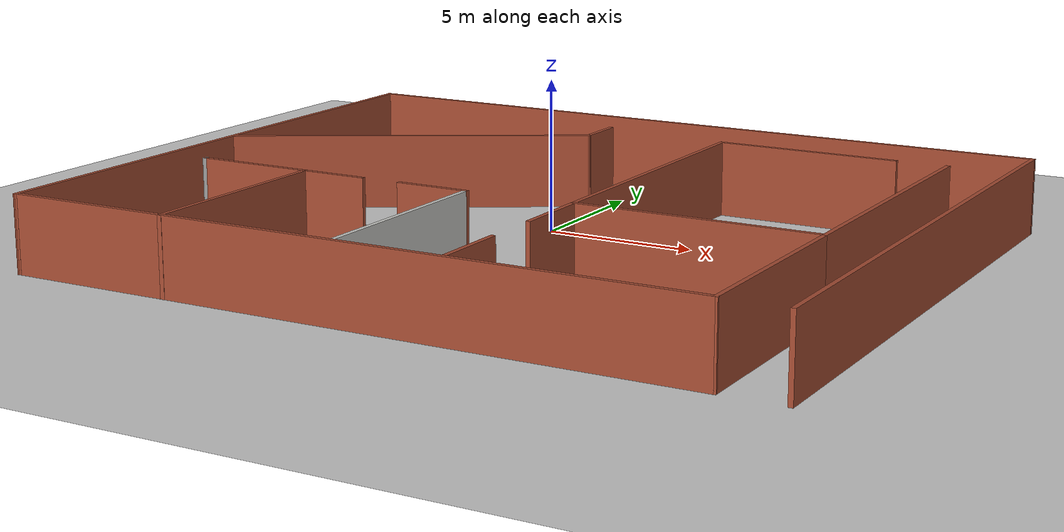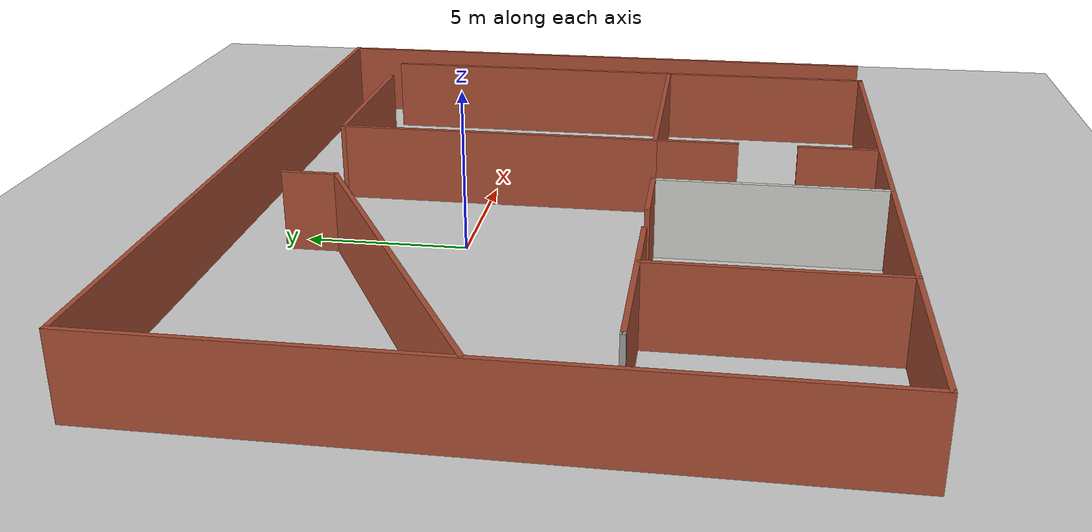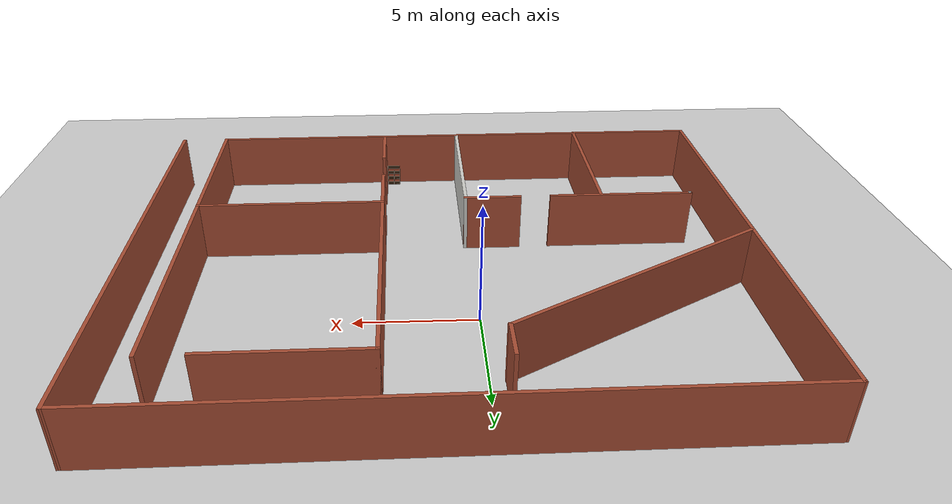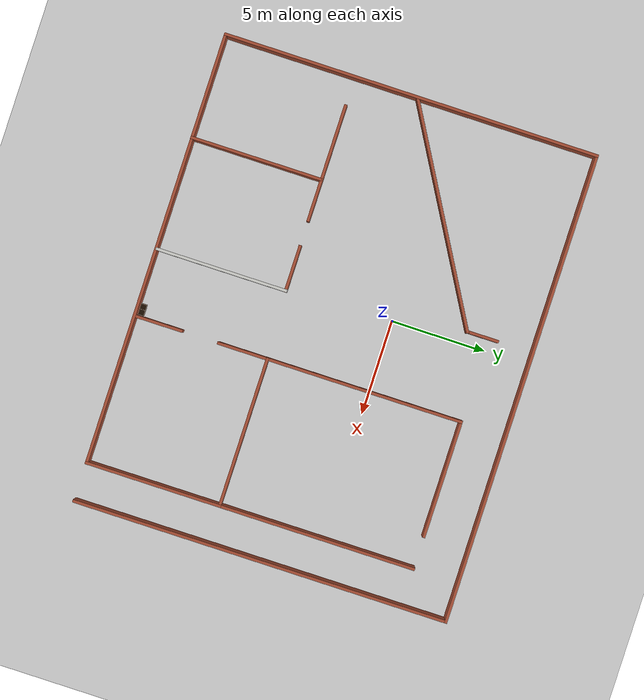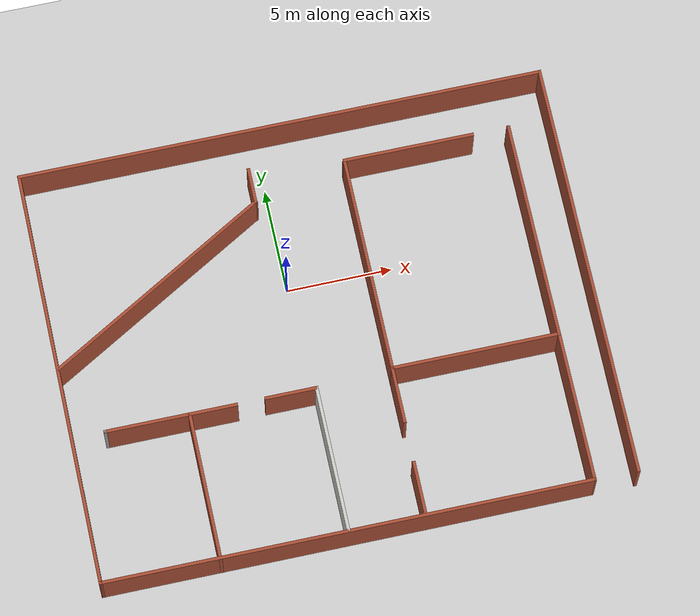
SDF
<sdf version="1.6">
 <world name="default">
  <model name="ground_plane">
   <static>1</static>
   <link name="link">
    <collision name="collision">
     <geometry><plane><normal>0 0 1</normal><size>100 100</size></plane></geometry>
     <surface><friction><ode><mu>100</mu><mu2>50</mu2></ode></friction></surface>
    </collision>
    <visual name="visual">
     <cast_shadows>0</cast_shadows>
     <geometry><plane><normal>0 0 1</normal><size>100 100</size></plane></geometry>
     <material>
      <script><uri>file://media/materials/scripts/gazebo.material</uri><name>Gazebo/Grey</name></script>
     </material>
    </visual>
   </link>
  </model>
  <model name="assignment_world">
   <pose>1.22682 -2.63609 0 0 -0 0</pose>
   <link name="Wall_11">
    <collision name="Wall_11_Collision">
     <geometry><box><size>7.25 0.15 2.5</size></box></geometry>
     <pose>0 0 1.25 0 -0 0</pose>
    </collision>
    <visual name="Wall_11_Visual">
     <pose>0 0 1.25 0 -0 0</pose>
     <geometry><box><size>7.25 0.15 2.5</size></box></geometry>
     <material>
      <script><uri>file://media/materials/scripts/gazebo.material</uri><name>Gazebo/Bricks</name></script>
      <ambient>1 1 1 1</ambient>
     </material>
     <meta><layer>0</layer></meta>
    </visual>
    <pose>10.422 -6.36383 0 0 -0 1.5708</pose>
   </link>
   <link name="Wall_12">
    <collision name="Wall_12_Collision">
     <geometry><box><size>8 0.15 2.5</size></box></geometry>
     <pose>0 0 1.25 0 -0 0</pose>
    </collision>
    <visual name="Wall_12_Visual">
     <pose>0 0 1.25 0 -0 0</pose>
     <geometry><box><size>8 0.15 2.5</size></box></geometry>
     <material>
      <script><uri>file://media/materials/scripts/gazebo.material</uri><name>Gazebo/Bricks</name></script>
      <ambient>1 1 1 1</ambient>
     </material>
     <meta><layer>0</layer></meta>
    </visual>
    <pose>6.49702 -2.81383 0 0 -0 3.14159</pose>
   </link>
   <link name="Wall_13">
    <collision name="Wall_13_Collision">
     <geometry><box><size>2.75 0.15 2.5</size></box></geometry>
     <pose>0 0 1.25 0 -0 0</pose>
    </collision>
    <visual name="Wall_13_Visual">
     <pose>0 0 1.25 0 -0 0</pose>
     <geometry><box><size>2.75 0.15 2.5</size></box></geometry>
     <material>
      <script><uri>file://media/materials/scripts/gazebo.material</uri><name>Gazebo/Bricks</name></script>
      <ambient>1 1 1 1</ambient>
     </material>
     <meta><layer>0</layer></meta>
    </visual>
    <pose>2.57202 -4.11383 0 0 -0 -1.5708</pose>
   </link>
   <link name="Wall_15">
    <collision name="Wall_15_Collision">
     <geometry><box><size>2.5 0.15 2.5</size></box></geometry>
     <pose>0 0 1.25 0 -0 0</pose>
    </collision>
    <visual name="Wall_15_Visual">
     <pose>0 0 1.25 0 -0 0</pose>
     <geometry><box><size>2.5 0.15 2.5</size></box></geometry>
     <material>
      <script><uri>file://media/materials/scripts/gazebo.material</uri><name>Gazebo/Bricks</name></script>
      <ambient>1 1 1 1</ambient>
     </material>
     <meta><layer>0</layer></meta>
    </visual>
    <pose>2.56055 -8.598 0 0 -0 -1.5708</pose>
   </link>
   <link name="Wall_17">
    <collision name="Wall_17_Collision">
     <geometry><box><size>10.5 0.15 2.5</size></box></geometry>
     <pose>0 0 1.25 0 -0 0</pose>
    </collision>
    <visual name="Wall_17_Visual">
     <pose>0 0 1.25 0 -0 0</pose>
     <geometry><box><size>10.5 0.15 2.5</size></box></geometry>
     <material>
      <script><uri>file://media/materials/scripts/gazebo.material</uri><name>Gazebo/Bricks</name></script>
      <ambient>1 1 1 1</ambient>
     </material>
     <meta><layer>0</layer></meta>
    </visual>
    <pose>10.422 2.36117 0 0 -0 1.5708</pose>
   </link>
   <link name="Wall_2">
    <collision name="Wall_2_Collision">
     <geometry><box><size>20.0001 0.15 2.5</size></box></geometry>
     <pose>0 0 1.25 0 -0 0</pose>
    </collision>
    <visual name="Wall_2_Visual">
     <pose>0 0 1.25 0 -0 0</pose>
     <geometry><box><size>20.0001 0.15 2.5</size></box></geometry>
     <material>
      <script><uri>file://media/materials/scripts/gazebo.material</uri><name>Gazebo/Bricks</name></script>
      <ambient>1 1 1 1</ambient>
     </material>
     <meta><layer>0</layer></meta>
    </visual>
    <pose>-12.4452 -0.009056 0 0 -0 -1.57314</pose>
   </link>
   <link name="Wall_24">
    <collision name="Wall_24_Collision">
     <geometry><box><size>10.5 0.15 2.5</size></box></geometry>
     <pose>0 0 1.25 0 -0 0</pose>
    </collision>
    <visual name="Wall_24_Visual">
     <pose>0 0 1.25 0 -0 0</pose>
     <geometry><box><size>10.5 0.15 2.5</size></box></geometry>
     <material>
      <script><uri>file://media/materials/scripts/gazebo.material</uri><name>Gazebo/Bricks</name></script>
      <ambient>1 1 1 1</ambient>
     </material>
     <meta><layer>0</layer></meta>
    </visual>
    <pose>2.57202 2.36117 0 0 -0 -1.5708</pose>
   </link>
   <link name="Wall_26">
    <collision name="Wall_26_Collision">
     <geometry><box><size>6.25 0.15 2.5</size></box></geometry>
     <pose>0 0 1.25 0 -0 0</pose>
    </collision>
    <visual name="Wall_26_Visual">
     <pose>0 0 1.25 0 -0 0</pose>
     <geometry><box><size>6.25 0.15 2.5</size></box></geometry>
     <material>
      <script><uri>file://media/materials/scripts/gazebo.material</uri><name>Gazebo/Bricks</name></script>
      <ambient>1 1 1 1</ambient>
     </material>
     <meta><layer>0</layer></meta>
    </visual>
    <pose>5.62202 7.53617 0 0 -0 0</pose>
   </link>
   <link name="Wall_33">
    <collision name="Wall_33_Collision">
     <geometry><box><size>12.25 0.15 2.5</size></box></geometry>
     <pose>0 0 1.25 0 -0 0</pose>
    </collision>
    <visual name="Wall_33_Visual">
     <pose>0 0 1.25 0 -0 0</pose>
     <geometry><box><size>12.25 0.15 2.5</size></box></geometry>
     <material>
      <script><uri>file://media/materials/scripts/gazebo.material</uri><name>Gazebo/Bricks</name></script>
      <ambient>1 1 1 1</ambient>
     </material>
     <meta><layer>0</layer></meta>
    </visual>
    <pose>-7.13474 3.38922 0 0 -0 0.523599</pose>
   </link>
   <link name="Wall_34">
    <collision name="Wall_34_Collision">
     <geometry><box><size>1.75 0.15 2.5</size></box></geometry>
     <pose>0 0 1.25 0 -0 0</pose>
    </collision>
    <visual name="Wall_34_Visual">
     <pose>0 0 1.25 0 -0 0</pose>
     <geometry><box><size>1.75 0.15 2.5</size></box></geometry>
     <material>
      <script><uri>file://media/materials/scripts/gazebo.material</uri><name>Gazebo/Bricks</name></script>
      <ambient>1 1 1 1</ambient>
     </material>
     <meta><layer>0</layer></meta>
    </visual>
    <pose>-1.89529 7.21422 0 0 -0 1.5708</pose>
   </link>
   <link name="Wall_4">
    <collision name="Wall_4_Collision">
     <geometry><box><size>25.0202 0.15 2.5</size></box></geometry>
     <pose>0 0 1.25 0 -0 0</pose>
    </collision>
    <visual name="Wall_4_Visual">
     <pose>0 0 1.25 0 -0 0</pose>
     <geometry><box><size>25.0202 0.15 2.5</size></box></geometry>
     <material>
      <script><uri>file://media/materials/scripts/gazebo.material</uri><name>Gazebo/Bricks</name></script>
      <ambient>1 1 1 1</ambient>
     </material>
     <meta><layer>0</layer></meta>
    </visual>
    <pose>0.033433 9.92606 0 0 -0 0.000813</pose>
   </link>
   <link name="Wall_42">
    <collision name="Wall_42_Collision">
     <geometry><box><size>7 0.15 2.5</size></box></geometry>
     <pose>0 0 1.25 0 -0 0</pose>
    </collision>
    <visual name="Wall_42_Visual">
     <pose>0 0 1.25 0 -0 0</pose>
     <geometry><box><size>7 0.15 2.5</size></box></geometry>
     <material>
      <script><uri>file://media/materials/scripts/gazebo.material</uri><name>Gazebo/CeilingTiled</name></script>
      <ambient>1 1 1 1</ambient>
     </material>
     <meta><layer>0</layer></meta>
    </visual>
    <pose>-1.02106 -6.43398 0 0 -0 1.5708</pose>
   </link>
   <link name="Wall_43">
    <collision name="Wall_43_Collision">
     <geometry><box><size>2.5 0.15 2.5</size></box></geometry>
     <pose>0 0 1.25 0 -0 0</pose>
    </collision>
    <visual name="Wall_43_Visual">
     <pose>0 0 1.25 0 -0 0</pose>
     <geometry><box><size>2.5 0.15 2.5</size></box></geometry>
     <material>
      <script><uri>file://media/materials/scripts/gazebo.material</uri><name>Gazebo/Bricks</name></script>
      <ambient>1 1 1 1</ambient>
     </material>
     <meta><layer>0</layer></meta>
    </visual>
    <pose>-2.19606 -3.00899 0 0 -0 3.14159</pose>
   </link>
   <link name="Wall_45">
    <collision name="Wall_45_Collision">
     <geometry><box><size>7 0.15 2.5</size></box></geometry>
     <pose>0 0 1.25 0 -0 0</pose>
    </collision>
    <visual name="Wall_45_Visual">
     <pose>0 0 1.25 0 -0 0</pose>
     <geometry><box><size>7 0.15 2.5</size></box></geometry>
     <material>
      <script><uri>file://media/materials/scripts/gazebo.material</uri><name>Gazebo/Bricks</name></script>
      <ambient>1 1 1 1</ambient>
     </material>
     <meta><layer>0</layer></meta>
    </visual>
    <pose>-6.94735 -6.51123 0 0 -0 1.5708</pose>
   </link>
   <link name="Wall_47">
    <collision name="Wall_47_Collision">
     <geometry><box><size>6.25 0.15 2.5</size></box></geometry>
     <pose>0 0 1.25 0 -0 0</pose>
    </collision>
    <visual name="Wall_47_Visual">
     <pose>0 0 1.25 0 -0 0</pose>
     <geometry><box><size>6.25 0.15 2.5</size></box></geometry>
     <material>
      <script><uri>file://media/materials/scripts/gazebo.material</uri><name>Gazebo/Bricks</name></script>
      <ambient>1 1 1 1</ambient>
     </material>
     <meta><layer>0</layer></meta>
    </visual>
    <pose>-7.83368 -3.02257 0 0 -0 3.14159</pose>
   </link>
   <link name="Wall_48">
    <collision name="Wall_48_Collision">
     <geometry><box><size>0.15 0.15 2.5</size></box></geometry>
     <pose>0 0 1.25 0 -0 0</pose>
    </collision>
    <visual name="Wall_48_Visual">
     <pose>0 0 1.25 0 -0 0</pose>
     <geometry><box><size>0.15 0.15 2.5</size></box></geometry>
     <material>
      <script><uri>file://media/materials/scripts/gazebo.material</uri><name>Gazebo/Grey</name></script>
      <ambient>1 1 1 1</ambient>
     </material>
     <meta><layer>0</layer></meta>
    </visual>
    <pose>-10.8837 -3.02257 0 0 -0 0</pose>
   </link>
   <link name="Wall_6">
    <collision name="Wall_6_Collision">
     <geometry><box><size>20 0.15 2.5</size></box></geometry>
     <pose>0 0 1.25 0 -0 0</pose>
    </collision>
    <visual name="Wall_6_Visual">
     <pose>0 0 1.25 0 -0 0</pose>
     <geometry><box><size>20 0.15 2.5</size></box></geometry>
     <material>
      <script><uri>file://media/materials/scripts/gazebo.material</uri><name>Gazebo/Bricks</name></script>
      <ambient>1 1 1 1</ambient>
     </material>
     <meta><layer>0</layer></meta>
    </visual>
    <pose>12.4685 0.011172 0 0 -0 -1.5708</pose>
   </link>
   <link name="Wall_8">
    <collision name="Wall_8_Collision">
     <geometry><box><size>23.0202 0.15 2.5</size></box></geometry>
     <pose>0 0 1.25 0 -0 0</pose>
    </collision>
    <visual name="Wall_8_Visual">
     <pose>0 0 1.25 0 -0 0</pose>
     <geometry><box><size>23.0202 0.15 2.5</size></box></geometry>
     <material>
      <script><uri>file://media/materials/scripts/gazebo.material</uri><name>Gazebo/Bricks</name></script>
      <ambient>1 1 1 1</ambient>
     </material>
     <meta><layer>0</layer></meta>
    </visual>
    <pose>-1.01309 -9.92394 0 0 -0 0.000884</pose>
   </link>
   <static>1</static>
  </model>
  <model name="6_Cube_StorageE">
   <link name="Wall_0">
    <pose>0 0 0.01 0 -0 0</pose>
    <inertial>
     <mass>1.6201</mass>
     <inertia><ixx>0.0119</ixx><iyy>0.0631</iyy><izz>0.0513</izz><ixy>0</ixy><ixz>0</ixz><iyz>0</iyz></inertia>
    </inertial>
    <collision name="Wall_0_Collision"><geometry><box><size>0.616 0.296 0.02</size></box></geometry></collision>
    <visual name="Wall_0_Visual">
     <geometry><box><size>0.616 0.296 0.02</size></box></geometry>
     <material>
      <script><uri>file://media/materials/scripts/gazebo.material</uri><name>Gazebo/Grey</name></script>
      <ambient>0.105882 0.0509804 0 1</ambient>
     </material>
    </visual>
   </link>
   <joint name="0_2" type="fixed">
    <pose>-0.308 0 0 0 -0 0</pose>
    <parent>Wall_2</parent>
    <child>Wall_0</child>
    <axis>
     <xyz>1 0 0</xyz>
     <use_parent_model_frame>0</use_parent_model_frame>
     <limit><lower>-1e+16</lower><upper>1e+16</upper></limit>
    </axis>
   </joint>
   <joint name="0_12" type="fixed">
    <parent>Wall_12</parent>
    <child>Wall_0</child>
    <axis>
     <xyz>0 0 1</xyz>
     <use_parent_model_frame>0</use_parent_model_frame>
     <limit><lower>-1e+16</lower><upper>1e+16</upper></limit>
    </axis>
   </joint>
   <joint name="0_4" type="fixed">
    <pose>0.308 0 0 0 -0 0</pose>
    <parent>Wall_4</parent>
    <child>Wall_0</child>
    <axis>
     <xyz>1 0 0</xyz>
     <use_parent_model_frame>0</use_parent_model_frame>
     <limit><lower>-1e+16</lower><upper>1e+16</upper></limit>
    </axis>
   </joint>
   <link name="Wall_10">
    <pose>0 0 0.61 0 -0 0</pose>
    <inertial>
     <mass>1.6201</mass>
     <inertia><ixx>0.0119</ixx><iyy>0.0631</iyy><izz>0.0513</izz><ixy>0</ixy><ixz>0</ixz><iyz>0</iyz></inertia>
    </inertial>
    <collision name="Wall_10_Collision"><geometry><box><size>0.616 0.296 0.02</size></box></geometry></collision>
    <visual name="Wall_10_Visual">
     <geometry><box><size>0.616 0.296 0.02</size></box></geometry>
     <material>
      <script><uri>file://media/materials/scripts/gazebo.material</uri><name>Gazebo/Grey</name></script>
      <ambient>0.105882 0.0509804 0 1</ambient>
     </material>
    </visual>
   </link>
   <joint name="10_2" type="fixed">
    <pose>-0.308 0 0 0 -0 0</pose>
    <parent>Wall_2</parent>
    <child>Wall_10</child>
    <axis>
     <xyz>1 0 0</xyz>
     <use_parent_model_frame>0</use_parent_model_frame>
     <limit><lower>-1e+16</lower><upper>1e+16</upper></limit>
    </axis>
   </joint>
   <joint name="10_12" type="fixed">
    <parent>Wall_12</parent>
    <child>Wall_10</child>
    <axis>
     <xyz>0 0 1</xyz>
     <use_parent_model_frame>0</use_parent_model_frame>
     <limit><lower>-1e+16</lower><upper>1e+16</upper></limit>
    </axis>
   </joint>
   <joint name="10_4" type="fixed">
    <pose>0.308 0 0 0 -0 0</pose>
    <parent>Wall_4</parent>
    <child>Wall_10</child>
    <axis>
     <xyz>1 0 0</xyz>
     <use_parent_model_frame>0</use_parent_model_frame>
     <limit><lower>-1e+16</lower><upper>1e+16</upper></limit>
    </axis>
   </joint>
   <link name="Wall_12">
    <pose>0 0 0.4575 0 -0 0</pose>
    <inertial>
     <mass>2.4065</mass>
     <inertia><ixx>0.0177</ixx><iyy>0.1855</iyy><izz>0.168</izz><ixy>0</ixy><ixz>0</ixz><iyz>0</iyz></inertia>
    </inertial>
    <collision name="Wall_12_Collision"><geometry><box><size>0.02 0.296 0.915</size></box></geometry></collision>
    <visual name="Wall_12_Visual">
     <geometry><box><size>0.02 0.296 0.915</size></box></geometry>
     <material>
      <script><uri>file://media/materials/scripts/gazebo.material</uri><name>Gazebo/Grey</name></script>
      <ambient>0.105882 0.0509804 0 1</ambient>
     </material>
    </visual>
   </link>
   <link name="Wall_2">
    <pose>-0.298 0 0.4575 0 -0 0</pose>
    <inertial>
     <mass>2.4065</mass>
     <inertia><ixx>0.0177</ixx><iyy>0.1855</iyy><izz>0.168</izz><ixy>0</ixy><ixz>0</ixz><iyz>0</iyz></inertia>
    </inertial>
    <collision name="Wall_2_Collision"><geometry><box><size>0.02 0.296 0.915</size></box></geometry></collision>
    <visual name="Wall_2_Visual">
     <geometry><box><size>0.02 0.296 0.915</size></box></geometry>
     <material>
      <script><uri>file://media/materials/scripts/gazebo.material</uri><name>Gazebo/Grey</name></script>
      <ambient>0.105882 0.0509804 0 1</ambient>
     </material>
    </visual>
   </link>
   <link name="Wall_4">
    <pose>0.298 0 0.4575 0 -0 0</pose>
    <inertial>
     <mass>2.4065</mass>
     <inertia><ixx>0.0177</ixx><iyy>0.1855</iyy><izz>0.168</izz><ixy>0</ixy><ixz>0</ixz><iyz>0</iyz></inertia>
    </inertial>
    <collision name="Wall_4_Collision"><geometry><box><size>0.02 0.296 0.915</size></box></geometry></collision>
    <visual name="Wall_4_Visual">
     <geometry><box><size>0.02 0.296 0.915</size></box></geometry>
     <material>
      <script><uri>file://media/materials/scripts/gazebo.material</uri><name>Gazebo/Grey</name></script>
      <ambient>0.105882 0.0509804 0 1</ambient>
     </material>
    </visual>
   </link>
   <link name="Wall_6">
    <pose>0 0 0.905 0 -0 0</pose>
    <inertial>
     <mass>1.6201</mass>
     <inertia><ixx>0.0119</ixx><iyy>0.0631</iyy><izz>0.0513</izz><ixy>0</ixy><ixz>0</ixz><iyz>0</iyz></inertia>
    </inertial>
    <collision name="Wall_6_Collision"><geometry><box><size>0.616 0.296 0.02</size></box></geometry></collision>
    <visual name="Wall_6_Visual">
     <geometry><box><size>0.616 0.296 0.02</size></box></geometry>
     <material>
      <script><uri>file://media/materials/scripts/gazebo.material</uri><name>Gazebo/Grey</name></script>
      <ambient>0.105882 0.0509804 0 1</ambient>
     </material>
    </visual>
   </link>
   <joint name="6_2" type="fixed">
    <pose>-0.308 0 0 0 -0 0</pose>
    <parent>Wall_2</parent>
    <child>Wall_6</child>
    <axis>
     <xyz>2 0 0</xyz>
     <use_parent_model_frame>0</use_parent_model_frame>
     <limit><lower>-1e+16</lower><upper>1e+16</upper></limit>
    </axis>
   </joint>
   <joint name="6_12" type="fixed">
    <parent>Wall_12</parent>
    <child>Wall_6</child>
    <axis>
     <xyz>0 0 1</xyz>
     <use_parent_model_frame>0</use_parent_model_frame>
     <limit><lower>-1e+16</lower><upper>1e+16</upper></limit>
    </axis>
   </joint>
   <joint name="6_4" type="fixed">
    <pose>0.308 0 0 0 -0 0</pose>
    <parent>Wall_4</parent>
    <child>Wall_6</child>
    <axis>
     <xyz>1 0 0</xyz>
     <use_parent_model_frame>0</use_parent_model_frame>
     <limit><lower>-1e+16</lower><upper>1e+16</upper></limit>
    </axis>
   </joint>
   <link name="Wall_8">
    <pose>0 0 0.305 0 -0 0</pose>
    <inertial>
     <mass>1.6201</mass>
     <inertia><ixx>0.0119</ixx><iyy>0.0631</iyy><izz>0.0513</izz><ixy>0</ixy><ixz>0</ixz><iyz>0</iyz></inertia>
    </inertial>
    <collision name="Wall_8_Collision"><geometry><box><size>0.616 0.296 0.02</size></box></geometry></collision>
    <visual name="Wall_8_Visual">
     <geometry><box><size>0.616 0.296 0.02</size></box></geometry>
     <material>
      <script><uri>file://media/materials/scripts/gazebo.material</uri><name>Gazebo/Grey</name></script>
      <ambient>0.105882 0.0509804 0 1</ambient>
     </material>
    </visual>
   </link>
   <joint name="8_2" type="fixed">
    <pose>-0.308 0 0 0 -0 0</pose>
    <parent>Wall_2</parent>
    <child>Wall_8</child>
    <axis>
     <xyz>1 0 0</xyz>
     <use_parent_model_frame>0</use_parent_model_frame>
     <limit><lower>-1e+16</lower><upper>1e+16</upper></limit>
    </axis>
   </joint>
   <joint name="8_12" type="fixed">
    <parent>Wall_12</parent>
    <child>Wall_8</child>
    <axis>
     <xyz>0 0 1</xyz>
     <use_parent_model_frame>0</use_parent_model_frame>
     <limit><lower>-1e+16</lower><upper>1e+16</upper></limit>
    </axis>
   </joint>
   <joint name="8_4" type="fixed">
    <pose>0.308 0 0 0 -0 0</pose>
    <parent>Wall_4</parent>
    <child>Wall_8</child>
    <axis>
     <xyz>1 0 0</xyz>
     <use_parent_model_frame>0</use_parent_model_frame>
     <limit><lower>-1e+16</lower><upper>1e+16</upper></limit>
    </axis>
   </joint>
   <static>1</static>
   <pose>3.3872 -12.3271 0 0 -0 0</pose>
  </model>
 </world>
</sdf>
